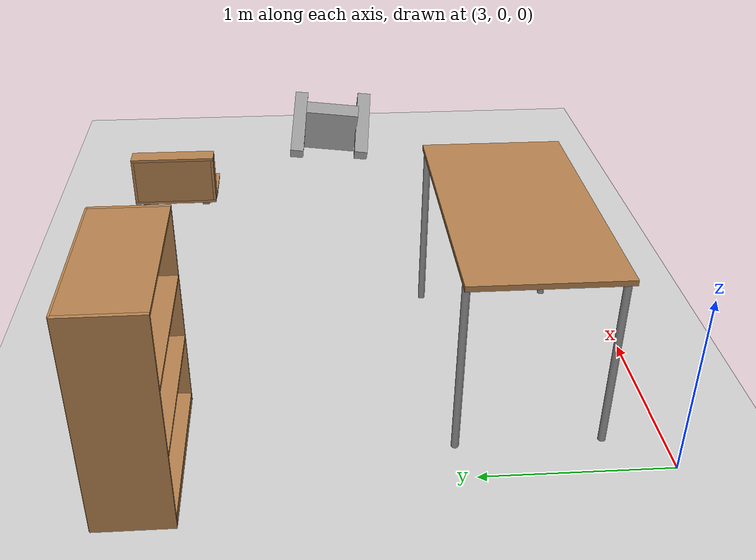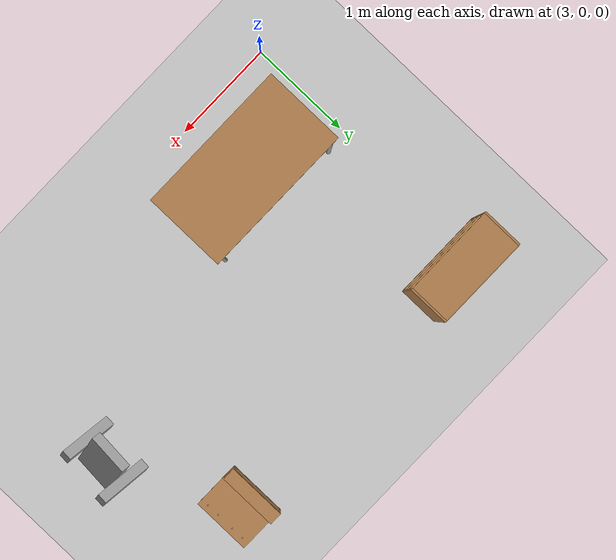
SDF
<sdf version="1.6">
 <world name="default">
  <model name="ground_plane">
   <static>1</static>
   <link name="link">
    <collision name="collision">
     <geometry><plane><normal>0 0 1</normal><size>100 100</size></plane></geometry>
     <surface>
      <contact><collide_bitmask>65535</collide_bitmask></contact>
      <friction><ode><mu>100</mu><mu2>50</mu2></ode></friction>
     </surface>
    </collision>
    <visual name="visual">
     <cast_shadows>0</cast_shadows>
     <geometry><plane><normal>0 0 1</normal><size>100 100</size></plane></geometry>
     <material>
      <script><uri>file://media/materials/scripts/gazebo.material</uri><name>Gazebo/Grey</name></script>
     </material>
    </visual>
   </link>
  </model>
  <model name="wooden_case">
   <link name="base">
    <pose>0 0 0.024 0 -0 0</pose>
    <inertial>
     <pose>-0.022184 0 0.171592 0 -0 0</pose>
     <mass>3.96264</mass>
     <inertia>
      <ixx>0.213536</ixx>
      <ixy>0</ixy>
      <ixz>0.000779377</ixz>
      <iyy>0.0708943</iyy>
      <iyz>0</iyz>
      <izz>0.154604</izz>
     </inertia>
    </inertial>
    <collision name="collision_back">
     <pose>-0.053975 0 0.1778 0 -0 0</pose>
     <geometry><box><size>0.01905 0.5461 0.3175</size></box></geometry>
     <surface>
      <contact>
       <poissons_ratio>0.347</poissons_ratio>
       <elastic_modulus>8.8e+09</elastic_modulus>
       <ode><kp>100000</kp><kd>100</kd><max_vel>100</max_vel><min_depth>0.001</min_depth></ode>
      </contact>
      <friction>
       <torsional>
        <coefficient>1</coefficient>
        <use_patch_radius>0</use_patch_radius>
        <surface_radius>0.01</surface_radius>
       </torsional>
      </friction>
     </surface>
    </collision>
    <visual name="visual_back">
     <pose>-0.053975 0 0.1778 0 -0 0</pose>
     <geometry><box><size>0.01905 0.5461 0.3175</size></box></geometry>
     <material>
      <script><uri>file://media/materials/scripts/gazebo.material</uri><name>Gazebo/Wood</name></script>
     </material>
    </visual>
    <collision name="collision_bottom">
     <pose>0 0 0.009525 0 -0 0</pose>
     <geometry><box><size>0.127 0.5842 0.01905</size></box></geometry>
     <surface>
      <contact>
       <poissons_ratio>0.347</poissons_ratio>
       <elastic_modulus>8.8e+09</elastic_modulus>
       <ode><kp>100000</kp><kd>100</kd><max_vel>100</max_vel><min_depth>0.001</min_depth></ode>
      </contact>
      <friction>
       <torsional>
        <coefficient>1</coefficient>
        <use_patch_radius>0</use_patch_radius>
        <surface_radius>0.01</surface_radius>
       </torsional>
      </friction>
     </surface>
    </collision>
    <visual name="visual_bottom">
     <pose>0 0 0.009525 0 -0 0</pose>
     <geometry><box><size>0.127 0.5842 0.01905</size></box></geometry>
     <material>
      <script><uri>file://media/materials/scripts/gazebo.material</uri><name>Gazebo/Wood</name></script>
     </material>
    </visual>
    <collision name="collision_top">
     <pose>0 0 0.346075 0 -0 0</pose>
     <geometry><box><size>0.127 0.5842 0.01905</size></box></geometry>
     <surface>
      <contact>
       <poissons_ratio>0.347</poissons_ratio>
       <elastic_modulus>8.8e+09</elastic_modulus>
       <ode><kp>100000</kp><kd>100</kd><max_vel>100</max_vel><min_depth>0.001</min_depth></ode>
      </contact>
      <friction>
       <torsional>
        <coefficient>1</coefficient>
        <use_patch_radius>0</use_patch_radius>
        <surface_radius>0.01</surface_radius>
       </torsional>
      </friction>
     </surface>
    </collision>
    <visual name="visual_top">
     <pose>0 0 0.346075 0 -0 0</pose>
     <geometry><box><size>0.127 0.5842 0.01905</size></box></geometry>
     <material>
      <script><uri>file://media/materials/scripts/gazebo.material</uri><name>Gazebo/Wood</name></script>
     </material>
    </visual>
    <collision name="collision_left">
     <pose>0 -0.282575 0.1778 0 -0 0</pose>
     <geometry><box><size>0.127 0.01905 0.3175</size></box></geometry>
     <surface>
      <contact>
       <poissons_ratio>0.347</poissons_ratio>
       <elastic_modulus>8.8e+09</elastic_modulus>
       <ode><kp>100000</kp><kd>100</kd><max_vel>100</max_vel><min_depth>0.001</min_depth></ode>
      </contact>
      <friction>
       <torsional>
        <coefficient>1</coefficient>
        <use_patch_radius>0</use_patch_radius>
        <surface_radius>0.01</surface_radius>
       </torsional>
      </friction>
     </surface>
    </collision>
    <visual name="visual_left">
     <pose>0 -0.282575 0.1778 0 -0 0</pose>
     <geometry><box><size>0.127 0.01905 0.3175</size></box></geometry>
     <material>
      <script><uri>file://media/materials/scripts/gazebo.material</uri><name>Gazebo/Wood</name></script>
     </material>
    </visual>
    <collision name="collision_right">
     <pose>0 0.282575 0.1778 0 -0 0</pose>
     <geometry><box><size>0.127 0.01905 0.3175</size></box></geometry>
     <surface>
      <contact>
       <poissons_ratio>0.347</poissons_ratio>
       <elastic_modulus>8.8e+09</elastic_modulus>
       <ode><kp>100000</kp><kd>100</kd><max_vel>100</max_vel><min_depth>0.001</min_depth></ode>
      </contact>
      <friction>
       <torsional>
        <coefficient>1</coefficient>
        <use_patch_radius>0</use_patch_radius>
        <surface_radius>0.01</surface_radius>
       </torsional>
      </friction>
     </surface>
    </collision>
    <visual name="visual_right">
     <pose>0 0.282575 0.1778 0 -0 0</pose>
     <geometry><box><size>0.127 0.01905 0.3175</size></box></geometry>
     <material>
      <script><uri>file://media/materials/scripts/gazebo.material</uri><name>Gazebo/Wood</name></script>
     </material>
    </visual>
    <collision name="collision_block_left">
     <pose>0.0095 -0.2151 -0.012 0 -0 0</pose>
     <geometry><box><size>0.108 0.05 0.024</size></box></geometry>
     <surface>
      <contact>
       <poissons_ratio>0.347</poissons_ratio>
       <elastic_modulus>8.8e+09</elastic_modulus>
       <ode><kp>100000</kp><kd>100</kd><max_vel>100</max_vel><min_depth>0.001</min_depth></ode>
      </contact>
      <friction>
       <torsional>
        <coefficient>1</coefficient>
        <use_patch_radius>0</use_patch_radius>
        <surface_radius>0.01</surface_radius>
       </torsional>
      </friction>
     </surface>
    </collision>
    <visual name="visual_block_left">
     <pose>0.0095 -0.2151 -0.012 0 -0 0</pose>
     <geometry><box><size>0.108 0.05 0.024</size></box></geometry>
     <material>
      <script><uri>file://media/materials/scripts/gazebo.material</uri><name>Gazebo/Wood</name></script>
     </material>
    </visual>
    <collision name="collision_block_right">
     <pose>0.0095 0.2151 -0.012 0 -0 0</pose>
     <geometry><box><size>0.108 0.05 0.024</size></box></geometry>
     <surface>
      <contact>
       <poissons_ratio>0.347</poissons_ratio>
       <elastic_modulus>8.8e+09</elastic_modulus>
       <ode><kp>100000</kp><kd>100</kd><max_vel>100</max_vel><min_depth>0.001</min_depth></ode>
      </contact>
      <friction>
       <torsional>
        <coefficient>1</coefficient>
        <use_patch_radius>0</use_patch_radius>
        <surface_radius>0.01</surface_radius>
       </torsional>
      </friction>
     </surface>
    </collision>
    <visual name="visual_block_right">
     <pose>0.0095 0.2151 -0.012 0 -0 0</pose>
     <geometry><box><size>0.108 0.05 0.024</size></box></geometry>
     <material>
      <script><uri>file://media/materials/scripts/gazebo.material</uri><name>Gazebo/Wood</name></script>
     </material>
    </visual>
   </link>
   <link name="lid">
    <pose>0.243775 0 0.009525 0 -0 0</pose>
    <inertial>
     <mass>1.97874</mass>
     <inertia>
      <ixx>0.0563367</ixx>
      <ixy>0</ixy>
      <ixz>0</ixz>
      <iyy>0.020911</iyy>
      <iyz>0</iyz>
      <izz>0.0771281</izz>
     </inertia>
    </inertial>
    <collision name="collision">
     <geometry><box><size>0.3556 0.5842 0.01905</size></box></geometry>
     <surface>
      <contact>
       <poissons_ratio>0.347</poissons_ratio>
       <elastic_modulus>8.8e+09</elastic_modulus>
       <ode><kp>100000</kp><kd>100</kd><max_vel>100</max_vel><min_depth>0.001</min_depth></ode>
      </contact>
      <friction>
       <torsional>
        <coefficient>1</coefficient>
        <use_patch_radius>0</use_patch_radius>
        <surface_radius>0.01</surface_radius>
       </torsional>
      </friction>
     </surface>
    </collision>
    <visual name="visual">
     <geometry><box><size>0.3556 0.5842 0.01905</size></box></geometry>
     <material>
      <script><uri>file://media/materials/scripts/gazebo.material</uri><name>Gazebo/Wood</name></script>
     </material>
    </visual>
    <visual name="tee_nut_1">
     <pose>0.122 -0.216 0 0 -0 0</pose>
     <geometry><cylinder><radius>0.00635</radius><length>0.0192405</length></cylinder></geometry>
     <material>
      <script><uri>file://media/materials/scripts/gazebo.material</uri><name>Gazebo/Grey</name></script>
     </material>
    </visual>
    <visual name="tee_nut_2">
     <pose>0.122 -0.088 0 0 -0 0</pose>
     <geometry><cylinder><radius>0.00635</radius><length>0.0192405</length></cylinder></geometry>
     <material>
      <script><uri>file://media/materials/scripts/gazebo.material</uri><name>Gazebo/Grey</name></script>
     </material>
    </visual>
    <visual name="tee_nut_3">
     <pose>0.122 0.088 0 0 -0 0</pose>
     <geometry><cylinder><radius>0.00635</radius><length>0.0192405</length></cylinder></geometry>
     <material>
      <script><uri>file://media/materials/scripts/gazebo.material</uri><name>Gazebo/Grey</name></script>
     </material>
    </visual>
    <visual name="tee_nut_4">
     <pose>0.122 0.216 0 0 -0 0</pose>
     <geometry><cylinder><radius>0.00635</radius><length>0.0192405</length></cylinder></geometry>
     <material>
      <script><uri>file://media/materials/scripts/gazebo.material</uri><name>Gazebo/Grey</name></script>
     </material>
    </visual>
   </link>
   <joint name="lid_hinge" type="revolute">
    <pose>-0.1778 0 0.01905 0 -0 0</pose>
    <parent>base</parent>
    <child>lid</child>
    <axis>
     <xyz>0 1 0</xyz>
     <limit><upper>0.523599</upper><lower>-1.5708</lower></limit>
     <use_parent_model_frame>0</use_parent_model_frame>
     <dynamics><spring_reference>0</spring_reference><spring_stiffness>0</spring_stiffness></dynamics>
    </axis>
   </joint>
   <pose>5.95085 2.71833 -0.001057 0 -0.000428 0</pose>
  </model>
  <model name="bookshelf">
   <static>1</static>
   <link name="link">
    <inertial><mass>1</mass></inertial>
    <collision name="back">
     <pose>0 0.005 0.6 0 -0 0</pose>
     <geometry><box><size>0.9 0.01 1.2</size></box></geometry>
    </collision>
    <visual name="visual1">
     <pose>0 0.005 0.6 0 -0 0</pose>
     <geometry><box><size>0.9 0.01 1.2</size></box></geometry>
     <material>
      <script><uri>file://media/materials/scripts/gazebo.material</uri><name>Gazebo/Wood</name></script>
     </material>
    </visual>
    <collision name="left_side">
     <pose>0.45 -0.195 0.6 0 -0 0</pose>
     <geometry><box><size>0.02 0.4 1.2</size></box></geometry>
    </collision>
    <visual name="visual2">
     <pose>0.45 -0.195 0.6 0 -0 0</pose>
     <geometry><box><size>0.02 0.4 1.2</size></box></geometry>
     <material>
      <script><uri>file://media/materials/scripts/gazebo.material</uri><name>Gazebo/Wood</name></script>
     </material>
    </visual>
    <collision name="right_side">
     <pose>-0.45 -0.195 0.6 0 -0 0</pose>
     <geometry><box><size>0.02 0.4 1.2</size></box></geometry>
    </collision>
    <visual name="visual3">
     <pose>-0.45 -0.195 0.6 0 -0 0</pose>
     <geometry><box><size>0.02 0.4 1.2</size></box></geometry>
     <material>
      <script><uri>file://media/materials/scripts/gazebo.material</uri><name>Gazebo/Wood</name></script>
     </material>
    </visual>
    <collision name="bottom">
     <pose>0 -0.195 0.03 0 -0 0</pose>
     <geometry><box><size>0.88 0.4 0.06</size></box></geometry>
    </collision>
    <visual name="visual4">
     <pose>0 -0.195 0.03 0 -0 0</pose>
     <geometry><box><size>0.88 0.4 0.06</size></box></geometry>
     <material>
      <script><uri>file://media/materials/scripts/gazebo.material</uri><name>Gazebo/Wood</name></script>
     </material>
    </visual>
    <collision name="top">
     <pose>0 -0.195 1.19 0 -0 0</pose>
     <geometry><box><size>0.88 0.4 0.02</size></box></geometry>
    </collision>
    <visual name="visual5">
     <pose>0 -0.195 1.19 0 -0 0</pose>
     <geometry><box><size>0.88 0.4 0.02</size></box></geometry>
     <material>
      <script><uri>file://media/materials/scripts/gazebo.material</uri><name>Gazebo/Wood</name></script>
     </material>
    </visual>
    <collision name="low_shelf">
     <pose>0 -0.195 0.43 0 -0 0</pose>
     <geometry><box><size>0.88 0.4 0.02</size></box></geometry>
    </collision>
    <visual name="visual6">
     <pose>0 -0.195 0.43 0 -0 0</pose>
     <geometry><box><size>0.88 0.4 0.02</size></box></geometry>
     <material>
      <script><uri>file://media/materials/scripts/gazebo.material</uri><name>Gazebo/Wood</name></script>
     </material>
    </visual>
    <collision name="high_shelf">
     <pose>0 -0.195 0.8 0 -0 0</pose>
     <geometry><box><size>0.88 0.4 0.02</size></box></geometry>
    </collision>
    <visual name="visual7">
     <pose>0 -0.195 0.8 0 -0 0</pose>
     <geometry><box><size>0.88 0.4 0.02</size></box></geometry>
     <material>
      <script><uri>file://media/materials/scripts/gazebo.material</uri><name>Gazebo/Wood</name></script>
     </material>
    </visual>
   </link>
   <pose>3.2253 2.8317 0 0 -0 0</pose>
  </model>
  <model name="table_1">
   <static>1</static>
   <link name="link">
    <collision name="surface">
     <pose>0 0 1 0 -0 0</pose>
     <geometry><box><size>1.5 0.8 0.03</size></box></geometry>
     <surface><friction><ode><mu>0.6</mu><mu2>0.6</mu2></ode></friction></surface>
    </collision>
    <visual name="visual1">
     <pose>0 0 1 0 -0 0</pose>
     <geometry><box><size>1.5 0.8 0.03</size></box></geometry>
     <material>
      <script><uri>file://media/materials/scripts/gazebo.material</uri><name>Gazebo/Wood</name></script>
     </material>
    </visual>
    <collision name="front_left_leg">
     <pose>0.68 0.38 0.5 0 -0 0</pose>
     <geometry><cylinder><radius>0.02</radius><length>1</length></cylinder></geometry>
    </collision>
    <visual name="front_left_leg">
     <pose>0.68 0.38 0.5 0 -0 0</pose>
     <geometry><cylinder><radius>0.02</radius><length>1</length></cylinder></geometry>
     <material>
      <script><uri>file://media/materials/scripts/gazebo.material</uri><name>Gazebo/Grey</name></script>
     </material>
    </visual>
    <collision name="front_right_leg">
     <pose>0.68 -0.38 0.5 0 -0 0</pose>
     <geometry><cylinder><radius>0.02</radius><length>1</length></cylinder></geometry>
    </collision>
    <visual name="front_right_leg">
     <pose>0.68 -0.38 0.5 0 -0 0</pose>
     <geometry><cylinder><radius>0.02</radius><length>1</length></cylinder></geometry>
     <material>
      <script><uri>file://media/materials/scripts/gazebo.material</uri><name>Gazebo/Grey</name></script>
     </material>
    </visual>
    <collision name="back_right_leg">
     <pose>-0.68 -0.38 0.5 0 -0 0</pose>
     <geometry><cylinder><radius>0.02</radius><length>1</length></cylinder></geometry>
    </collision>
    <visual name="back_right_leg">
     <pose>-0.68 -0.38 0.5 0 -0 0</pose>
     <geometry><cylinder><radius>0.02</radius><length>1</length></cylinder></geometry>
     <material>
      <script><uri>file://media/materials/scripts/gazebo.material</uri><name>Gazebo/Grey</name></script>
     </material>
    </visual>
    <collision name="back_left_leg">
     <pose>-0.68 0.38 0.5 0 -0 0</pose>
     <geometry><cylinder><radius>0.02</radius><length>1</length></cylinder></geometry>
    </collision>
    <visual name="back_left_leg">
     <pose>-0.68 0.38 0.5 0 -0 0</pose>
     <geometry><cylinder><radius>0.02</radius><length>1</length></cylinder></geometry>
     <material>
      <script><uri>file://media/materials/scripts/gazebo.material</uri><name>Gazebo/Grey</name></script>
     </material>
    </visual>
   </link>
   <pose>3.91165 0.694633 0 0 -0 0</pose>
  </model>
  <model name="robot_0">
   <link name="link_0">
    <pose>0.01834 -0.001591 0 0 -0 0</pose>
    <inertial>
     <mass>1</mass>
     <inertia>
      <ixx>0.166667</ixx>
      <ixy>0</ixy>
      <ixz>0</ixz>
      <iyy>0.166667</iyy>
      <iyz>0</iyz>
      <izz>0.166667</izz>
     </inertia>
    </inertial>
    <visual name="visual">
     <geometry><box><size>0.5 0.4 0.1</size></box></geometry>
     <material>
      <lighting>1</lighting>
      <script><uri>file://media/materials/scripts/gazebo.material</uri><name>Gazebo/Grey</name></script>
      <shader type="pixel"><normal_map>__default__</normal_map></shader>
      <ambient>0.3 0.3 0.3 1</ambient>
      <diffuse>0.7 0.7 0.7 1</diffuse>
      <specular>0.01 0.01 0.01 1</specular>
      <emissive>0 0 0 1</emissive>
     </material>
    </visual>
    <collision name="collision">
     <geometry><box><size>0.5 0.4 0.1</size></box></geometry>
     <surface>
      <friction>
       <ode><mu>1</mu><mu2>1</mu2><fdir1>0 0 0</fdir1><slip1>0</slip1><slip2>0</slip2></ode>
       <torsional>
        <coefficient>1</coefficient>
        <patch_radius>0</patch_radius>
        <surface_radius>0</surface_radius>
        <use_patch_radius>1</use_patch_radius>
        <ode><slip>0</slip></ode>
       </torsional>
      </friction>
      <bounce><restitution_coefficient>0</restitution_coefficient><threshold>1e+06</threshold></bounce>
      <contact>
       <collide_without_contact>0</collide_without_contact>
       <collide_without_contact_bitmask>1</collide_without_contact_bitmask>
       <collide_bitmask>1</collide_bitmask>
       <ode>
        <soft_cfm>0</soft_cfm>
        <soft_erp>0.2</soft_erp>
        <kp>1e+13</kp>
        <kd>1</kd>
        <max_vel>0.01</max_vel>
        <min_depth>0</min_depth>
       </ode>
       <bullet>
        <split_impulse>1</split_impulse>
        <split_impulse_penetration_threshold>-0.01</split_impulse_penetration_threshold>
        <soft_cfm>0</soft_cfm>
        <soft_erp>0.2</soft_erp>
        <kp>1e+13</kp>
        <kd>1</kd>
       </bullet>
      </contact>
     </surface>
    </collision>
   </link>
   <link name="link_4">
    <pose>-0.03668 -0.246818 0 0 -0 0</pose>
    <inertial>
     <mass>1</mass>
     <inertia>
      <ixx>0.166667</ixx>
      <ixy>0</ixy>
      <ixz>0</ixz>
      <iyy>0.166667</iyy>
      <iyz>0</iyz>
      <izz>0.166667</izz>
     </inertia>
    </inertial>
    <visual name="visual">
     <geometry><box><size>0.1 0.1 0.55</size></box></geometry>
     <material>
      <lighting>1</lighting>
      <script><uri>file://media/materials/scripts/gazebo.material</uri><name>Gazebo/Grey</name></script>
      <shader type="pixel"><normal_map>__default__</normal_map></shader>
      <ambient>0.3 0.3 0.3 1</ambient>
      <diffuse>0.7 0.7 0.7 1</diffuse>
      <specular>0.01 0.01 0.01 1</specular>
      <emissive>0 0 0 1</emissive>
     </material>
    </visual>
    <collision name="collision">
     <geometry><box><size>0.1 0.1 0.55</size></box></geometry>
     <surface>
      <friction>
       <ode><mu>1</mu><mu2>1</mu2><fdir1>0 0 0</fdir1><slip1>0</slip1><slip2>0</slip2></ode>
       <torsional>
        <coefficient>1</coefficient>
        <patch_radius>0</patch_radius>
        <surface_radius>0</surface_radius>
        <use_patch_radius>1</use_patch_radius>
        <ode><slip>0</slip></ode>
       </torsional>
      </friction>
      <bounce><restitution_coefficient>0</restitution_coefficient><threshold>1e+06</threshold></bounce>
      <contact>
       <collide_without_contact>0</collide_without_contact>
       <collide_without_contact_bitmask>1</collide_without_contact_bitmask>
       <collide_bitmask>1</collide_bitmask>
       <ode>
        <soft_cfm>0</soft_cfm>
        <soft_erp>0.2</soft_erp>
        <kp>1e+13</kp>
        <kd>1</kd>
        <max_vel>0.01</max_vel>
        <min_depth>0</min_depth>
       </ode>
       <bullet>
        <split_impulse>1</split_impulse>
        <split_impulse_penetration_threshold>-0.01</split_impulse_penetration_threshold>
        <soft_cfm>0</soft_cfm>
        <soft_erp>0.2</soft_erp>
        <kp>1e+13</kp>
        <kd>1</kd>
       </bullet>
      </contact>
     </surface>
    </collision>
   </link>
   <link name="link_4_clone">
    <pose>0.01834 0.248409 0 0 -0 0</pose>
    <inertial>
     <mass>1</mass>
     <inertia>
      <ixx>0.166667</ixx>
      <ixy>0</ixy>
      <ixz>0</ixz>
      <iyy>0.166667</iyy>
      <iyz>0</iyz>
      <izz>0.166667</izz>
     </inertia>
    </inertial>
    <visual name="visual">
     <geometry><box><size>0.1 0.1 0.55</size></box></geometry>
     <material>
      <lighting>1</lighting>
      <script><uri>file://media/materials/scripts/gazebo.material</uri><name>Gazebo/Grey</name></script>
      <shader type="pixel"><normal_map>__default__</normal_map></shader>
      <ambient>0.3 0.3 0.3 1</ambient>
      <diffuse>0.7 0.7 0.7 1</diffuse>
      <specular>0.01 0.01 0.01 1</specular>
      <emissive>0 0 0 1</emissive>
     </material>
    </visual>
    <collision name="collision">
     <geometry><box><size>0.1 0.1 0.55</size></box></geometry>
     <surface>
      <friction>
       <ode><mu>1</mu><mu2>1</mu2><fdir1>0 0 0</fdir1><slip1>0</slip1><slip2>0</slip2></ode>
       <torsional>
        <coefficient>1</coefficient>
        <patch_radius>0</patch_radius>
        <surface_radius>0</surface_radius>
        <use_patch_radius>1</use_patch_radius>
        <ode><slip>0</slip></ode>
       </torsional>
      </friction>
      <bounce><restitution_coefficient>0</restitution_coefficient><threshold>1e+06</threshold></bounce>
      <contact>
       <collide_without_contact>0</collide_without_contact>
       <collide_without_contact_bitmask>1</collide_without_contact_bitmask>
       <collide_bitmask>1</collide_bitmask>
       <ode>
        <soft_cfm>0</soft_cfm>
        <soft_erp>0.2</soft_erp>
        <kp>1e+13</kp>
        <kd>1</kd>
        <max_vel>0.01</max_vel>
        <min_depth>0</min_depth>
       </ode>
       <bullet>
        <split_impulse>1</split_impulse>
        <split_impulse_penetration_threshold>-0.01</split_impulse_penetration_threshold>
        <soft_cfm>0</soft_cfm>
        <soft_erp>0.2</soft_erp>
        <kp>1e+13</kp>
        <kd>1</kd>
       </bullet>
      </contact>
     </surface>
    </collision>
   </link>
   <joint name="link_0_JOINT_0" type="revolute">
    <parent>link_0</parent>
    <child>link_4</child>
    <axis>
     <xyz>0 1 0</xyz>
     <use_parent_model_frame>0</use_parent_model_frame>
     <limit>
      <lower>-1.79769e+308</lower>
      <upper>1.79769e+308</upper>
      <effort>-1</effort>
      <velocity>-1</velocity>
     </limit>
     <dynamics>
      <spring_reference>0</spring_reference>
      <spring_stiffness>0</spring_stiffness>
      <damping>0</damping>
     </dynamics>
    </axis>
    <physics>
     <ode><limit><cfm>0</cfm><erp>0.2</erp></limit><suspension><cfm>0</cfm><erp>0.2</erp></suspension></ode>
    </physics>
   </joint>
   <joint name="link_0_JOINT_2" type="revolute">
    <parent>link_0</parent>
    <child>link_4_clone</child>
    <axis>
     <xyz>0 1 0</xyz>
     <use_parent_model_frame>0</use_parent_model_frame>
     <limit>
      <lower>-1.79769e+308</lower>
      <upper>1.79769e+308</upper>
      <effort>-1</effort>
      <velocity>-1</velocity>
     </limit>
     <dynamics>
      <spring_reference>0</spring_reference>
      <spring_stiffness>0</spring_stiffness>
      <damping>0</damping>
     </dynamics>
    </axis>
    <physics>
     <ode><limit><cfm>0</cfm><erp>0.2</erp></limit><suspension><cfm>0</cfm><erp>0.2</erp></suspension></ode>
    </physics>
   </joint>
   <static>0</static>
   <pose>6.64682 1.54754 0.270696 0.172012 0.995082 0.08065</pose>
  </model>
 </world>
</sdf>
